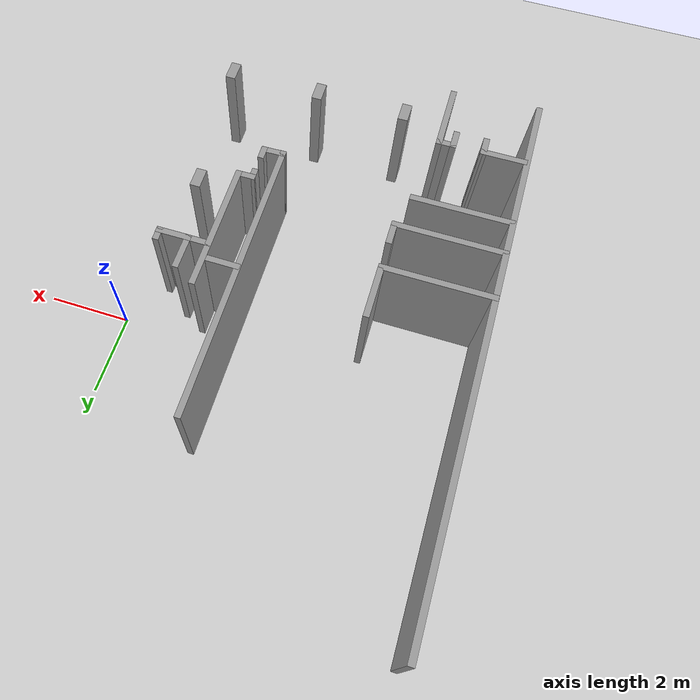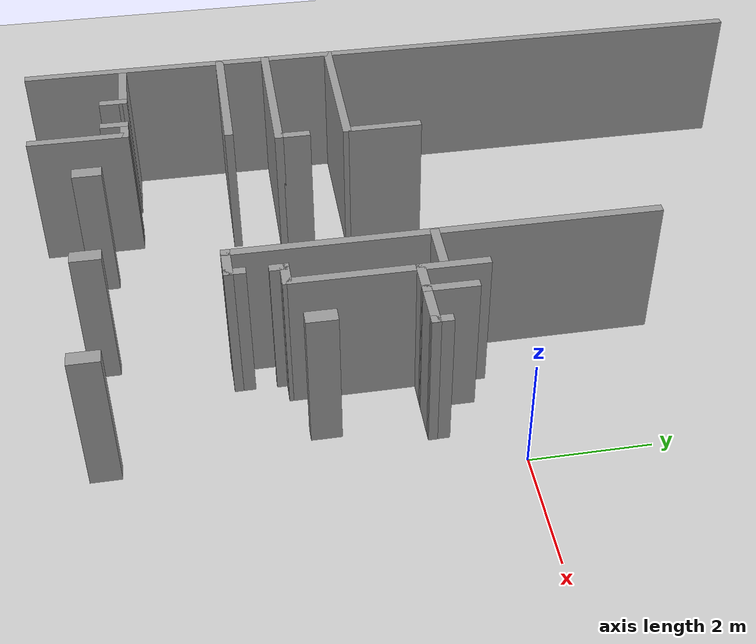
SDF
<sdf version="1.7">
 <world name="default">
  <model name="ground_plane">
   <static>1</static>
   <link name="link">
    <collision name="collision">
     <geometry><plane><normal>0 0 1</normal><size>100 100</size></plane></geometry>
     <surface><friction><ode><mu>100</mu><mu2>50</mu2></ode></friction></surface>
    </collision>
    <visual name="visual">
     <cast_shadows>0</cast_shadows>
     <geometry><plane><normal>0 0 1</normal><size>100 100</size></plane></geometry>
     <material>
      <script><uri>file://media/materials/scripts/gazebo.material</uri><name>Gazebo/Grey</name></script>
     </material>
    </visual>
   </link>
  </model>
  <model name="Level1">
   <link name="Wall_147_clone_clone_15">
    <pose>-1.07107 -3.0379 0 0 -0 1.5708</pose>
    <visual name="Wall_147_Visual">
     <pose>0 0 1.25 0 -0 0</pose>
     <geometry><box><size>0.5 0.25 2.5</size></box></geometry>
     <material>
      <script><uri>file://media/materials/scripts/gazebo.material</uri><name>Gazebo/Grey</name></script>
      <ambient>1 1 1 1</ambient>
      <shader type="pixel"/>
     </material>
     <meta><layer>0</layer></meta>
    </visual>
    <collision name="Wall_147_Collision">
     <pose>0 0 1.25 0 -0 0</pose>
     <geometry><box><size>0.5 0.25 2.5</size></box></geometry>
     <surface>
      <friction>
       <ode><mu>1</mu><mu2>1</mu2><fdir1>0 0 0</fdir1><slip1>0</slip1><slip2>0</slip2></ode>
       <torsional>
        <coefficient>1</coefficient>
        <patch_radius>0</patch_radius>
        <surface_radius>0</surface_radius>
        <use_patch_radius>1</use_patch_radius>
        <ode><slip>0</slip></ode>
       </torsional>
      </friction>
      <bounce><restitution_coefficient>0</restitution_coefficient><threshold>1e+06</threshold></bounce>
      <contact>
       <collide_without_contact>0</collide_without_contact>
       <collide_without_contact_bitmask>1</collide_without_contact_bitmask>
       <collide_bitmask>1</collide_bitmask>
       <ode>
        <soft_cfm>0</soft_cfm>
        <soft_erp>0.2</soft_erp>
        <kp>1e+13</kp>
        <kd>1</kd>
        <max_vel>0.01</max_vel>
        <min_depth>0</min_depth>
       </ode>
       <bullet>
        <split_impulse>1</split_impulse>
        <split_impulse_penetration_threshold>-0.01</split_impulse_penetration_threshold>
        <soft_cfm>0</soft_cfm>
        <soft_erp>0.2</soft_erp>
        <kp>1e+13</kp>
        <kd>1</kd>
       </bullet>
      </contact>
     </surface>
    </collision>
   </link>
   <link name="Wall_147_clone_clone_17">
    <pose>-5.27812 -6.47737 0 0 -0 1.5708</pose>
    <visual name="Wall_147_Visual">
     <pose>0 0 1.25 0 -0 0</pose>
     <geometry><box><size>0.5 0.25 2.5</size></box></geometry>
     <material>
      <script><uri>file://media/materials/scripts/gazebo.material</uri><name>Gazebo/Grey</name></script>
      <ambient>1 1 1 1</ambient>
      <shader type="pixel"/>
     </material>
     <meta><layer>0</layer></meta>
    </visual>
    <collision name="Wall_147_Collision">
     <pose>0 0 1.25 0 -0 0</pose>
     <geometry><box><size>0.5 0.25 2.5</size></box></geometry>
     <surface>
      <friction>
       <ode><mu>1</mu><mu2>1</mu2><fdir1>0 0 0</fdir1><slip1>0</slip1><slip2>0</slip2></ode>
       <torsional>
        <coefficient>1</coefficient>
        <patch_radius>0</patch_radius>
        <surface_radius>0</surface_radius>
        <use_patch_radius>1</use_patch_radius>
        <ode><slip>0</slip></ode>
       </torsional>
      </friction>
      <bounce><restitution_coefficient>0</restitution_coefficient><threshold>1e+06</threshold></bounce>
      <contact>
       <collide_without_contact>0</collide_without_contact>
       <collide_without_contact_bitmask>1</collide_without_contact_bitmask>
       <collide_bitmask>1</collide_bitmask>
       <ode>
        <soft_cfm>0</soft_cfm>
        <soft_erp>0.2</soft_erp>
        <kp>1e+13</kp>
        <kd>1</kd>
        <max_vel>0.01</max_vel>
        <min_depth>0</min_depth>
       </ode>
       <bullet>
        <split_impulse>1</split_impulse>
        <split_impulse_penetration_threshold>-0.01</split_impulse_penetration_threshold>
        <soft_cfm>0</soft_cfm>
        <soft_erp>0.2</soft_erp>
        <kp>1e+13</kp>
        <kd>1</kd>
       </bullet>
      </contact>
     </surface>
    </collision>
   </link>
   <link name="Wall_147_clone_clone_18">
    <pose>-3.04314 -6.47737 0 0 -0 1.5708</pose>
    <visual name="Wall_147_Visual">
     <pose>0 0 1.25 0 -0 0</pose>
     <geometry><box><size>0.5 0.25 2.5</size></box></geometry>
     <material>
      <script><uri>file://media/materials/scripts/gazebo.material</uri><name>Gazebo/Grey</name></script>
      <ambient>1 1 1 1</ambient>
      <shader type="pixel"/>
     </material>
     <meta><layer>0</layer></meta>
    </visual>
    <collision name="Wall_147_Collision">
     <pose>0 0 1.25 0 -0 0</pose>
     <geometry><box><size>0.5 0.25 2.5</size></box></geometry>
     <surface>
      <friction>
       <ode><mu>1</mu><mu2>1</mu2><fdir1>0 0 0</fdir1><slip1>0</slip1><slip2>0</slip2></ode>
       <torsional>
        <coefficient>1</coefficient>
        <patch_radius>0</patch_radius>
        <surface_radius>0</surface_radius>
        <use_patch_radius>1</use_patch_radius>
        <ode><slip>0</slip></ode>
       </torsional>
      </friction>
      <bounce><restitution_coefficient>0</restitution_coefficient><threshold>1e+06</threshold></bounce>
      <contact>
       <collide_without_contact>0</collide_without_contact>
       <collide_without_contact_bitmask>1</collide_without_contact_bitmask>
       <collide_bitmask>1</collide_bitmask>
       <ode>
        <soft_cfm>0</soft_cfm>
        <soft_erp>0.2</soft_erp>
        <kp>1e+13</kp>
        <kd>1</kd>
        <max_vel>0.01</max_vel>
        <min_depth>0</min_depth>
       </ode>
       <bullet>
        <split_impulse>1</split_impulse>
        <split_impulse_penetration_threshold>-0.01</split_impulse_penetration_threshold>
        <soft_cfm>0</soft_cfm>
        <soft_erp>0.2</soft_erp>
        <kp>1e+13</kp>
        <kd>1</kd>
       </bullet>
      </contact>
     </surface>
    </collision>
   </link>
   <link name="Wall_147_clone_clone_19">
    <pose>-0.744882 -6.47737 0 0 -0 1.5708</pose>
    <visual name="Wall_147_Visual">
     <pose>0 0 1.25 0 -0 0</pose>
     <geometry><box><size>0.5 0.25 2.5</size></box></geometry>
     <material>
      <script><uri>file://media/materials/scripts/gazebo.material</uri><name>Gazebo/Grey</name></script>
      <ambient>1 1 1 1</ambient>
      <shader type="pixel"/>
     </material>
     <meta><layer>0</layer></meta>
    </visual>
    <collision name="Wall_147_Collision">
     <pose>0 0 1.25 0 -0 0</pose>
     <geometry><box><size>0.5 0.25 2.5</size></box></geometry>
     <surface>
      <friction>
       <ode><mu>1</mu><mu2>1</mu2><fdir1>0 0 0</fdir1><slip1>0</slip1><slip2>0</slip2></ode>
       <torsional>
        <coefficient>1</coefficient>
        <patch_radius>0</patch_radius>
        <surface_radius>0</surface_radius>
        <use_patch_radius>1</use_patch_radius>
        <ode><slip>0</slip></ode>
       </torsional>
      </friction>
      <bounce><restitution_coefficient>0</restitution_coefficient><threshold>1e+06</threshold></bounce>
      <contact>
       <collide_without_contact>0</collide_without_contact>
       <collide_without_contact_bitmask>1</collide_without_contact_bitmask>
       <collide_bitmask>1</collide_bitmask>
       <ode>
        <soft_cfm>0</soft_cfm>
        <soft_erp>0.2</soft_erp>
        <kp>1e+13</kp>
        <kd>1</kd>
        <max_vel>0.01</max_vel>
        <min_depth>0</min_depth>
       </ode>
       <bullet>
        <split_impulse>1</split_impulse>
        <split_impulse_penetration_threshold>-0.01</split_impulse_penetration_threshold>
        <soft_cfm>0</soft_cfm>
        <soft_erp>0.2</soft_erp>
        <kp>1e+13</kp>
        <kd>1</kd>
       </bullet>
      </contact>
     </surface>
    </collision>
   </link>
   <link name="Wall_3">
    <pose>-8.45529 -0.886891 0 0 0 -1.5708</pose>
    <visual name="Wall_3_Visual">
     <pose>0 0 1.25 0 -0 0</pose>
     <geometry><box><size>13.5 0.15 2.5</size></box></geometry>
     <material>
      <script><uri>file://media/materials/scripts/gazebo.material</uri><name>Gazebo/Grey</name></script>
      <ambient>1 1 1 1</ambient>
      <shader type="pixel"/>
     </material>
     <meta><layer>0</layer></meta>
    </visual>
    <collision name="Wall_3_Collision">
     <pose>0 0 1.25 0 -0 0</pose>
     <geometry><box><size>13.5 0.15 2.5</size></box></geometry>
     <surface>
      <friction>
       <ode><mu>1</mu><mu2>1</mu2><fdir1>0 0 0</fdir1><slip1>0</slip1><slip2>0</slip2></ode>
       <torsional>
        <coefficient>1</coefficient>
        <patch_radius>0</patch_radius>
        <surface_radius>0</surface_radius>
        <use_patch_radius>1</use_patch_radius>
        <ode><slip>0</slip></ode>
       </torsional>
      </friction>
      <bounce><restitution_coefficient>0</restitution_coefficient><threshold>1e+06</threshold></bounce>
      <contact>
       <collide_without_contact>0</collide_without_contact>
       <collide_without_contact_bitmask>1</collide_without_contact_bitmask>
       <collide_bitmask>1</collide_bitmask>
       <ode>
        <soft_cfm>0</soft_cfm>
        <soft_erp>0.2</soft_erp>
        <kp>1e+13</kp>
        <kd>1</kd>
        <max_vel>0.01</max_vel>
        <min_depth>0</min_depth>
       </ode>
       <bullet>
        <split_impulse>1</split_impulse>
        <split_impulse_penetration_threshold>-0.01</split_impulse_penetration_threshold>
        <soft_cfm>0</soft_cfm>
        <soft_erp>0.2</soft_erp>
        <kp>1e+13</kp>
        <kd>1</kd>
       </bullet>
      </contact>
     </surface>
    </collision>
   </link>
   <link name="Wall_36">
    <pose>-7.88866 -5.85285 0 0 -0 0.000617</pose>
    <visual name="Wall_36_Visual">
     <pose>0 0 1.25 0 -0 0</pose>
     <geometry><box><size>1.14323 0.15 2.5</size></box></geometry>
     <material>
      <script><uri>file://media/materials/scripts/gazebo.material</uri><name>Gazebo/Grey</name></script>
      <ambient>1 1 1 1</ambient>
      <shader type="pixel"/>
     </material>
     <meta><layer>0</layer></meta>
    </visual>
    <collision name="Wall_36_Collision">
     <pose>0 0 1.25 0 -0 0</pose>
     <geometry><box><size>1.14323 0.15 2.5</size></box></geometry>
     <surface>
      <friction>
       <ode><mu>1</mu><mu2>1</mu2><fdir1>0 0 0</fdir1><slip1>0</slip1><slip2>0</slip2></ode>
       <torsional>
        <coefficient>1</coefficient>
        <patch_radius>0</patch_radius>
        <surface_radius>0</surface_radius>
        <use_patch_radius>1</use_patch_radius>
        <ode><slip>0</slip></ode>
       </torsional>
      </friction>
      <bounce><restitution_coefficient>0</restitution_coefficient><threshold>1e+06</threshold></bounce>
      <contact>
       <collide_without_contact>0</collide_without_contact>
       <collide_without_contact_bitmask>1</collide_without_contact_bitmask>
       <collide_bitmask>1</collide_bitmask>
       <ode>
        <soft_cfm>0</soft_cfm>
        <soft_erp>0.2</soft_erp>
        <kp>1e+13</kp>
        <kd>1</kd>
        <max_vel>0.01</max_vel>
        <min_depth>0</min_depth>
       </ode>
       <bullet>
        <split_impulse>1</split_impulse>
        <split_impulse_penetration_threshold>-0.01</split_impulse_penetration_threshold>
        <soft_cfm>0</soft_cfm>
        <soft_erp>0.2</soft_erp>
        <kp>1e+13</kp>
        <kd>1</kd>
       </bullet>
      </contact>
     </surface>
    </collision>
   </link>
   <link name="Wall_37">
    <pose>-7.39204 -6.02754 0 0 0 -1.5708</pose>
    <visual name="Wall_37_Visual">
     <pose>0 0 1.25 0 -0 0</pose>
     <geometry><box><size>0.5 0.15 2.5</size></box></geometry>
     <material>
      <script><uri>file://media/materials/scripts/gazebo.material</uri><name>Gazebo/Grey</name></script>
      <ambient>1 1 1 1</ambient>
      <shader type="pixel"/>
     </material>
     <meta><layer>0</layer></meta>
    </visual>
    <collision name="Wall_37_Collision">
     <pose>0 0 1.25 0 -0 0</pose>
     <geometry><box><size>0.5 0.15 2.5</size></box></geometry>
     <surface>
      <friction>
       <ode><mu>1</mu><mu2>1</mu2><fdir1>0 0 0</fdir1><slip1>0</slip1><slip2>0</slip2></ode>
       <torsional>
        <coefficient>1</coefficient>
        <patch_radius>0</patch_radius>
        <surface_radius>0</surface_radius>
        <use_patch_radius>1</use_patch_radius>
        <ode><slip>0</slip></ode>
       </torsional>
      </friction>
      <bounce><restitution_coefficient>0</restitution_coefficient><threshold>1e+06</threshold></bounce>
      <contact>
       <collide_without_contact>0</collide_without_contact>
       <collide_without_contact_bitmask>1</collide_without_contact_bitmask>
       <collide_bitmask>1</collide_bitmask>
       <ode>
        <soft_cfm>0</soft_cfm>
        <soft_erp>0.2</soft_erp>
        <kp>1e+13</kp>
        <kd>1</kd>
        <max_vel>0.01</max_vel>
        <min_depth>0</min_depth>
       </ode>
       <bullet>
        <split_impulse>1</split_impulse>
        <split_impulse_penetration_threshold>-0.01</split_impulse_penetration_threshold>
        <soft_cfm>0</soft_cfm>
        <soft_erp>0.2</soft_erp>
        <kp>1e+13</kp>
        <kd>1</kd>
       </bullet>
      </contact>
     </surface>
    </collision>
   </link>
   <link name="Wall_39">
    <pose>-6.47345 -5.83812 0 0 -0 0</pose>
    <visual name="Wall_39_Visual">
     <pose>0 0 1.25 0 -0 0</pose>
     <geometry><box><size>0.5 0.15 2.5</size></box></geometry>
     <material>
      <script><uri>file://media/materials/scripts/gazebo.material</uri><name>Gazebo/Grey</name></script>
      <ambient>1 1 1 1</ambient>
      <shader type="pixel"/>
     </material>
     <meta><layer>0</layer></meta>
    </visual>
    <collision name="Wall_39_Collision">
     <pose>0 0 1.25 0 -0 0</pose>
     <geometry><box><size>0.5 0.15 2.5</size></box></geometry>
     <surface>
      <friction>
       <ode><mu>1</mu><mu2>1</mu2><fdir1>0 0 0</fdir1><slip1>0</slip1><slip2>0</slip2></ode>
       <torsional>
        <coefficient>1</coefficient>
        <patch_radius>0</patch_radius>
        <surface_radius>0</surface_radius>
        <use_patch_radius>1</use_patch_radius>
        <ode><slip>0</slip></ode>
       </torsional>
      </friction>
      <bounce><restitution_coefficient>0</restitution_coefficient><threshold>1e+06</threshold></bounce>
      <contact>
       <collide_without_contact>0</collide_without_contact>
       <collide_without_contact_bitmask>1</collide_without_contact_bitmask>
       <collide_bitmask>1</collide_bitmask>
       <ode>
        <soft_cfm>0</soft_cfm>
        <soft_erp>0.2</soft_erp>
        <kp>1e+13</kp>
        <kd>1</kd>
        <max_vel>0.01</max_vel>
        <min_depth>0</min_depth>
       </ode>
       <bullet>
        <split_impulse>1</split_impulse>
        <split_impulse_penetration_threshold>-0.01</split_impulse_penetration_threshold>
        <soft_cfm>0</soft_cfm>
        <soft_erp>0.2</soft_erp>
        <kp>1e+13</kp>
        <kd>1</kd>
       </bullet>
      </contact>
     </surface>
    </collision>
   </link>
   <link name="Wall_40">
    <pose>-6.29845 -6.63811 0 0 0 -1.5708</pose>
    <visual name="Wall_40_Visual">
     <pose>0 0 1.25 0 -0 0</pose>
     <geometry><box><size>1.75 0.15 2.5</size></box></geometry>
     <material>
      <script><uri>file://media/materials/scripts/gazebo.material</uri><name>Gazebo/Grey</name></script>
      <ambient>1 1 1 1</ambient>
      <shader type="pixel"/>
     </material>
     <meta><layer>0</layer></meta>
    </visual>
    <collision name="Wall_40_Collision">
     <pose>0 0 1.25 0 -0 0</pose>
     <geometry><box><size>1.75 0.15 2.5</size></box></geometry>
     <surface>
      <friction>
       <ode><mu>1</mu><mu2>1</mu2><fdir1>0 0 0</fdir1><slip1>0</slip1><slip2>0</slip2></ode>
       <torsional>
        <coefficient>1</coefficient>
        <patch_radius>0</patch_radius>
        <surface_radius>0</surface_radius>
        <use_patch_radius>1</use_patch_radius>
        <ode><slip>0</slip></ode>
       </torsional>
      </friction>
      <bounce><restitution_coefficient>0</restitution_coefficient><threshold>1e+06</threshold></bounce>
      <contact>
       <collide_without_contact>0</collide_without_contact>
       <collide_without_contact_bitmask>1</collide_without_contact_bitmask>
       <collide_bitmask>1</collide_bitmask>
       <ode>
        <soft_cfm>0</soft_cfm>
        <soft_erp>0.2</soft_erp>
        <kp>1e+13</kp>
        <kd>1</kd>
        <max_vel>0.01</max_vel>
        <min_depth>0</min_depth>
       </ode>
       <bullet>
        <split_impulse>1</split_impulse>
        <split_impulse_penetration_threshold>-0.01</split_impulse_penetration_threshold>
        <soft_cfm>0</soft_cfm>
        <soft_erp>0.2</soft_erp>
        <kp>1e+13</kp>
        <kd>1</kd>
       </bullet>
      </contact>
     </surface>
    </collision>
   </link>
   <link name="Wall_42">
    <pose>-6.64845 -6.01311 0 0 0 -1.5708</pose>
    <visual name="Wall_42_Visual">
     <pose>0 0 1.25 0 -0 0</pose>
     <geometry><box><size>0.5 0.15 2.5</size></box></geometry>
     <material>
      <script><uri>file://media/materials/scripts/gazebo.material</uri><name>Gazebo/Grey</name></script>
      <ambient>1 1 1 1</ambient>
      <shader type="pixel"/>
     </material>
     <meta><layer>0</layer></meta>
    </visual>
    <collision name="Wall_42_Collision">
     <pose>0 0 1.25 0 -0 0</pose>
     <geometry><box><size>0.5 0.15 2.5</size></box></geometry>
     <surface>
      <friction>
       <ode><mu>1</mu><mu2>1</mu2><fdir1>0 0 0</fdir1><slip1>0</slip1><slip2>0</slip2></ode>
       <torsional>
        <coefficient>1</coefficient>
        <patch_radius>0</patch_radius>
        <surface_radius>0</surface_radius>
        <use_patch_radius>1</use_patch_radius>
        <ode><slip>0</slip></ode>
       </torsional>
      </friction>
      <bounce><restitution_coefficient>0</restitution_coefficient><threshold>1e+06</threshold></bounce>
      <contact>
       <collide_without_contact>0</collide_without_contact>
       <collide_without_contact_bitmask>1</collide_without_contact_bitmask>
       <collide_bitmask>1</collide_bitmask>
       <ode>
        <soft_cfm>0</soft_cfm>
        <soft_erp>0.2</soft_erp>
        <kp>1e+13</kp>
        <kd>1</kd>
        <max_vel>0.01</max_vel>
        <min_depth>0</min_depth>
       </ode>
       <bullet>
        <split_impulse>1</split_impulse>
        <split_impulse_penetration_threshold>-0.01</split_impulse_penetration_threshold>
        <soft_cfm>0</soft_cfm>
        <soft_erp>0.2</soft_erp>
        <kp>1e+13</kp>
        <kd>1</kd>
       </bullet>
      </contact>
     </surface>
    </collision>
   </link>
   <link name="Wall_44">
    <pose>-7.25264 -4.03783 0 0 -0 0</pose>
    <visual name="Wall_44_Visual">
     <pose>0 0 1.25 0 -0 0</pose>
     <geometry><box><size>2.5 0.15 2.5</size></box></geometry>
     <material>
      <script><uri>file://media/materials/scripts/gazebo.material</uri><name>Gazebo/Grey</name></script>
      <ambient>1 1 1 1</ambient>
      <shader type="pixel"/>
     </material>
     <meta><layer>0</layer></meta>
    </visual>
    <collision name="Wall_44_Collision">
     <pose>0 0 1.25 0 -0 0</pose>
     <geometry><box><size>2.5 0.15 2.5</size></box></geometry>
     <surface>
      <friction>
       <ode><mu>1</mu><mu2>1</mu2><fdir1>0 0 0</fdir1><slip1>0</slip1><slip2>0</slip2></ode>
       <torsional>
        <coefficient>1</coefficient>
        <patch_radius>0</patch_radius>
        <surface_radius>0</surface_radius>
        <use_patch_radius>1</use_patch_radius>
        <ode><slip>0</slip></ode>
       </torsional>
      </friction>
      <bounce><restitution_coefficient>0</restitution_coefficient><threshold>1e+06</threshold></bounce>
      <contact>
       <collide_without_contact>0</collide_without_contact>
       <collide_without_contact_bitmask>1</collide_without_contact_bitmask>
       <collide_bitmask>1</collide_bitmask>
       <ode>
        <soft_cfm>0</soft_cfm>
        <soft_erp>0.2</soft_erp>
        <kp>1e+13</kp>
        <kd>1</kd>
        <max_vel>0.01</max_vel>
        <min_depth>0</min_depth>
       </ode>
       <bullet>
        <split_impulse>1</split_impulse>
        <split_impulse_penetration_threshold>-0.01</split_impulse_penetration_threshold>
        <soft_cfm>0</soft_cfm>
        <soft_erp>0.2</soft_erp>
        <kp>1e+13</kp>
        <kd>1</kd>
       </bullet>
      </contact>
     </surface>
    </collision>
   </link>
   <link name="Wall_46">
    <pose>-7.14617 -3.18183 0 0 -0 0</pose>
    <visual name="Wall_46_Visual">
     <pose>0 0 1.25 0 -0 0</pose>
     <geometry><box><size>2.75 0.15 2.5</size></box></geometry>
     <material>
      <script><uri>file://media/materials/scripts/gazebo.material</uri><name>Gazebo/Grey</name></script>
      <ambient>1 1 1 1</ambient>
      <shader type="pixel"/>
     </material>
     <meta><layer>0</layer></meta>
    </visual>
    <collision name="Wall_46_Collision">
     <pose>0 0 1.25 0 -0 0</pose>
     <geometry><box><size>2.75 0.15 2.5</size></box></geometry>
     <surface>
      <friction>
       <ode><mu>1</mu><mu2>1</mu2><fdir1>0 0 0</fdir1><slip1>0</slip1><slip2>0</slip2></ode>
       <torsional>
        <coefficient>1</coefficient>
        <patch_radius>0</patch_radius>
        <surface_radius>0</surface_radius>
        <use_patch_radius>1</use_patch_radius>
        <ode><slip>0</slip></ode>
       </torsional>
      </friction>
      <bounce><restitution_coefficient>0</restitution_coefficient><threshold>1e+06</threshold></bounce>
      <contact>
       <collide_without_contact>0</collide_without_contact>
       <collide_without_contact_bitmask>1</collide_without_contact_bitmask>
       <collide_bitmask>1</collide_bitmask>
       <ode>
        <soft_cfm>0</soft_cfm>
        <soft_erp>0.2</soft_erp>
        <kp>1e+13</kp>
        <kd>1</kd>
        <max_vel>0.01</max_vel>
        <min_depth>0</min_depth>
       </ode>
       <bullet>
        <split_impulse>1</split_impulse>
        <split_impulse_penetration_threshold>-0.01</split_impulse_penetration_threshold>
        <soft_cfm>0</soft_cfm>
        <soft_erp>0.2</soft_erp>
        <kp>1e+13</kp>
        <kd>1</kd>
       </bullet>
      </contact>
     </surface>
    </collision>
   </link>
   <link name="Wall_47">
    <pose>-5.84617 -2.88183 0 0 -0 1.5708</pose>
    <gravity>0</gravity>
    <inertial>
     <mass>1</mass>
     <inertia><ixx>1</ixx><ixy>0</ixy><ixz>0</ixz><iyy>1</iyy><iyz>0</iyz><izz>1</izz></inertia>
    </inertial>
    <visual name="Wall_47_Visual">
     <pose>0 0 1.25 0 -0 0</pose>
     <geometry><box><size>0.5 0.15 2.5</size></box></geometry>
     <material>
      <script><uri>file://media/materials/scripts/gazebo.material</uri><name>Gazebo/Grey</name></script>
      <ambient>1 1 1 1</ambient>
      <shader type="pixel"><normal_map>__default__</normal_map></shader>
      <diffuse>0.7 0.7 0.7 1</diffuse>
      <specular>0.01 0.01 0.01 1</specular>
      <emissive>0 0 0 1</emissive>
     </material>
     <meta><layer>0</layer></meta>
    </visual>
    <collision name="Wall_47_Collision">
     <pose>0 0 1.25 0 -0 0</pose>
     <geometry><box><size>0.5 0.15 2.5</size></box></geometry>
     <surface>
      <friction>
       <ode><mu>1</mu><mu2>1</mu2><fdir1>0 0 0</fdir1><slip1>0</slip1><slip2>0</slip2></ode>
       <torsional>
        <coefficient>1</coefficient>
        <patch_radius>0</patch_radius>
        <surface_radius>0</surface_radius>
        <use_patch_radius>1</use_patch_radius>
        <ode><slip>0</slip></ode>
       </torsional>
      </friction>
      <bounce><restitution_coefficient>0</restitution_coefficient><threshold>1e+06</threshold></bounce>
      <contact>
       <collide_without_contact>0</collide_without_contact>
       <collide_without_contact_bitmask>1</collide_without_contact_bitmask>
       <collide_bitmask>1</collide_bitmask>
       <ode>
        <soft_cfm>0</soft_cfm>
        <soft_erp>0.2</soft_erp>
        <kp>1e+13</kp>
        <kd>1</kd>
        <max_vel>0.01</max_vel>
        <min_depth>0</min_depth>
       </ode>
       <bullet>
        <split_impulse>1</split_impulse>
        <split_impulse_penetration_threshold>-0.01</split_impulse_penetration_threshold>
        <soft_cfm>0</soft_cfm>
        <soft_erp>0.2</soft_erp>
        <kp>1e+13</kp>
        <kd>1</kd>
       </bullet>
      </contact>
     </surface>
    </collision>
   </link>
   <link name="Wall_51">
    <pose>-7.14907 -1.98142 0 0 -0 0</pose>
    <visual name="Wall_51_Visual">
     <pose>0 0 1.25 0 -0 0</pose>
     <geometry><box><size>2.75 0.15 2.5</size></box></geometry>
     <material>
      <script><uri>file://media/materials/scripts/gazebo.material</uri><name>Gazebo/Grey</name></script>
      <ambient>1 1 1 1</ambient>
      <shader type="pixel"/>
     </material>
     <meta><layer>0</layer></meta>
    </visual>
    <collision name="Wall_51_Collision">
     <pose>0 0 1.25 0 -0 0</pose>
     <geometry><box><size>2.75 0.15 2.5</size></box></geometry>
     <surface>
      <friction>
       <ode><mu>1</mu><mu2>1</mu2><fdir1>0 0 0</fdir1><slip1>0</slip1><slip2>0</slip2></ode>
       <torsional>
        <coefficient>1</coefficient>
        <patch_radius>0</patch_radius>
        <surface_radius>0</surface_radius>
        <use_patch_radius>1</use_patch_radius>
        <ode><slip>0</slip></ode>
       </torsional>
      </friction>
      <bounce><restitution_coefficient>0</restitution_coefficient><threshold>1e+06</threshold></bounce>
      <contact>
       <collide_without_contact>0</collide_without_contact>
       <collide_without_contact_bitmask>1</collide_without_contact_bitmask>
       <collide_bitmask>1</collide_bitmask>
       <ode>
        <soft_cfm>0</soft_cfm>
        <soft_erp>0.2</soft_erp>
        <kp>1e+13</kp>
        <kd>1</kd>
        <max_vel>0.01</max_vel>
        <min_depth>0</min_depth>
       </ode>
       <bullet>
        <split_impulse>1</split_impulse>
        <split_impulse_penetration_threshold>-0.01</split_impulse_penetration_threshold>
        <soft_cfm>0</soft_cfm>
        <soft_erp>0.2</soft_erp>
        <kp>1e+13</kp>
        <kd>1</kd>
       </bullet>
      </contact>
     </surface>
    </collision>
   </link>
   <link name="Wall_52">
    <pose>-5.84907 -1.30642 0 0 -0 1.5708</pose>
    <gravity>0</gravity>
    <inertial>
     <mass>1</mass>
     <inertia><ixx>1</ixx><ixy>0</ixy><ixz>0</ixz><iyy>1</iyy><iyz>0</iyz><izz>1</izz></inertia>
    </inertial>
    <visual name="Wall_52_Visual">
     <pose>0 0 1.25 0 -0 0</pose>
     <geometry><box><size>1.3 0.15 2.5</size></box></geometry>
     <material>
      <script><uri>file://media/materials/scripts/gazebo.material</uri><name>Gazebo/Grey</name></script>
      <ambient>1 1 1 1</ambient>
      <shader type="pixel"><normal_map>__default__</normal_map></shader>
      <diffuse>0.7 0.7 0.7 1</diffuse>
      <specular>0.01 0.01 0.01 1</specular>
      <emissive>0 0 0 1</emissive>
     </material>
     <meta><layer>0</layer></meta>
    </visual>
    <collision name="Wall_52_Collision">
     <pose>0 0 1.25 0 -0 0</pose>
     <geometry><box><size>1.3 0.15 2.5</size></box></geometry>
     <surface>
      <friction>
       <ode><mu>1</mu><mu2>1</mu2><fdir1>0 0 0</fdir1><slip1>0</slip1><slip2>0</slip2></ode>
       <torsional>
        <coefficient>1</coefficient>
        <patch_radius>0</patch_radius>
        <surface_radius>0</surface_radius>
        <use_patch_radius>1</use_patch_radius>
        <ode><slip>0</slip></ode>
       </torsional>
      </friction>
      <bounce><restitution_coefficient>0</restitution_coefficient><threshold>1e+06</threshold></bounce>
      <contact>
       <collide_without_contact>0</collide_without_contact>
       <collide_without_contact_bitmask>1</collide_without_contact_bitmask>
       <collide_bitmask>1</collide_bitmask>
       <ode>
        <soft_cfm>0</soft_cfm>
        <soft_erp>0.2</soft_erp>
        <kp>1e+13</kp>
        <kd>1</kd>
        <max_vel>0.01</max_vel>
        <min_depth>0</min_depth>
       </ode>
       <bullet>
        <split_impulse>1</split_impulse>
        <split_impulse_penetration_threshold>-0.01</split_impulse_penetration_threshold>
        <soft_cfm>0</soft_cfm>
        <soft_erp>0.2</soft_erp>
        <kp>1e+13</kp>
        <kd>1</kd>
       </bullet>
      </contact>
     </surface>
    </collision>
   </link>
   <link name="Wall_67">
    <pose>-2.77219 -0.826282 0 0 0 -1.56974</pose>
    <visual name="Wall_67_Visual">
     <pose>0 0 1.25 0 -0 0</pose>
     <geometry><box><size>7.15984 0.15 2.5</size></box></geometry>
     <material>
      <script><uri>file://media/materials/scripts/gazebo.material</uri><name>Gazebo/Grey</name></script>
      <ambient>1 1 1 1</ambient>
      <shader type="pixel"/>
     </material>
     <meta><layer>0</layer></meta>
    </visual>
    <collision name="Wall_67_Collision">
     <pose>0 0 1.25 0 -0 0</pose>
     <geometry><box><size>7.15984 0.15 2.5</size></box></geometry>
     <surface>
      <friction>
       <ode><mu>1</mu><mu2>1</mu2><fdir1>0 0 0</fdir1><slip1>0</slip1><slip2>0</slip2></ode>
       <torsional>
        <coefficient>1</coefficient>
        <patch_radius>0</patch_radius>
        <surface_radius>0</surface_radius>
        <use_patch_radius>1</use_patch_radius>
        <ode><slip>0</slip></ode>
       </torsional>
      </friction>
      <bounce><restitution_coefficient>0</restitution_coefficient><threshold>1e+06</threshold></bounce>
      <contact>
       <collide_without_contact>0</collide_without_contact>
       <collide_without_contact_bitmask>1</collide_without_contact_bitmask>
       <collide_bitmask>1</collide_bitmask>
       <ode>
        <soft_cfm>0</soft_cfm>
        <soft_erp>0.2</soft_erp>
        <kp>1e+13</kp>
        <kd>1</kd>
        <max_vel>0.01</max_vel>
        <min_depth>0</min_depth>
       </ode>
       <bullet>
        <split_impulse>1</split_impulse>
        <split_impulse_penetration_threshold>-0.01</split_impulse_penetration_threshold>
        <soft_cfm>0</soft_cfm>
        <soft_erp>0.2</soft_erp>
        <kp>1e+13</kp>
        <kd>1</kd>
       </bullet>
      </contact>
     </surface>
    </collision>
   </link>
   <link name="Wall_71">
    <pose>-2.53063 -4.32345 0 0 -0 0.016955</pose>
    <visual name="Wall_71_Visual">
     <pose>0 0 1.25 0 -0 0</pose>
     <geometry><box><size>0.625763 0.15 2.5</size></box></geometry>
     <material>
      <script><uri>file://media/materials/scripts/gazebo.material</uri><name>Gazebo/Grey</name></script>
      <ambient>1 1 1 1</ambient>
      <shader type="pixel"/>
     </material>
     <meta><layer>0</layer></meta>
    </visual>
    <collision name="Wall_71_Collision">
     <pose>0 0 1.25 0 -0 0</pose>
     <geometry><box><size>0.625763 0.15 2.5</size></box></geometry>
     <surface>
      <friction>
       <ode><mu>1</mu><mu2>1</mu2><fdir1>0 0 0</fdir1><slip1>0</slip1><slip2>0</slip2></ode>
       <torsional>
        <coefficient>1</coefficient>
        <patch_radius>0</patch_radius>
        <surface_radius>0</surface_radius>
        <use_patch_radius>1</use_patch_radius>
        <ode><slip>0</slip></ode>
       </torsional>
      </friction>
      <bounce><restitution_coefficient>0</restitution_coefficient><threshold>1e+06</threshold></bounce>
      <contact>
       <collide_without_contact>0</collide_without_contact>
       <collide_without_contact_bitmask>1</collide_without_contact_bitmask>
       <collide_bitmask>1</collide_bitmask>
       <ode>
        <soft_cfm>0</soft_cfm>
        <soft_erp>0.2</soft_erp>
        <kp>1e+13</kp>
        <kd>1</kd>
        <max_vel>0.01</max_vel>
        <min_depth>0</min_depth>
       </ode>
       <bullet>
        <split_impulse>1</split_impulse>
        <split_impulse_penetration_threshold>-0.01</split_impulse_penetration_threshold>
        <soft_cfm>0</soft_cfm>
        <soft_erp>0.2</soft_erp>
        <kp>1e+13</kp>
        <kd>1</kd>
       </bullet>
      </contact>
     </surface>
    </collision>
   </link>
   <link name="Wall_72">
    <pose>-2.29439 -4.21976 0 0 -0 1.56838</pose>
    <visual name="Wall_72_Visual">
     <pose>0 0 1.25 0 -0 0</pose>
     <geometry><box><size>0.349303 0.15 2.5</size></box></geometry>
     <material>
      <script><uri>file://media/materials/scripts/gazebo.material</uri><name>Gazebo/Grey</name></script>
      <ambient>1 1 1 1</ambient>
      <shader type="pixel"/>
     </material>
     <meta><layer>0</layer></meta>
    </visual>
    <collision name="Wall_72_Collision">
     <pose>0 0 1.25 0 -0 0</pose>
     <geometry><box><size>0.349303 0.15 2.5</size></box></geometry>
     <surface>
      <friction>
       <ode><mu>1</mu><mu2>1</mu2><fdir1>0 0 0</fdir1><slip1>0</slip1><slip2>0</slip2></ode>
       <torsional>
        <coefficient>1</coefficient>
        <patch_radius>0</patch_radius>
        <surface_radius>0</surface_radius>
        <use_patch_radius>1</use_patch_radius>
        <ode><slip>0</slip></ode>
       </torsional>
      </friction>
      <bounce><restitution_coefficient>0</restitution_coefficient><threshold>1e+06</threshold></bounce>
      <contact>
       <collide_without_contact>0</collide_without_contact>
       <collide_without_contact_bitmask>1</collide_without_contact_bitmask>
       <collide_bitmask>1</collide_bitmask>
       <ode>
        <soft_cfm>0</soft_cfm>
        <soft_erp>0.2</soft_erp>
        <kp>1e+13</kp>
        <kd>1</kd>
        <max_vel>0.01</max_vel>
        <min_depth>0</min_depth>
       </ode>
       <bullet>
        <split_impulse>1</split_impulse>
        <split_impulse_penetration_threshold>-0.01</split_impulse_penetration_threshold>
        <soft_cfm>0</soft_cfm>
        <soft_erp>0.2</soft_erp>
        <kp>1e+13</kp>
        <kd>1</kd>
       </bullet>
      </contact>
     </surface>
    </collision>
   </link>
   <link name="Wall_81">
    <pose>-2.28497 -3.53784 0 0 -0 1.5708</pose>
    <visual name="Wall_81_Visual">
     <pose>0 0 1.25 0 -0 0</pose>
     <geometry><box><size>0.316332 0.15 2.5</size></box></geometry>
     <material>
      <script><uri>file://media/materials/scripts/gazebo.material</uri><name>Gazebo/Grey</name></script>
      <ambient>1 1 1 1</ambient>
      <shader type="pixel"/>
     </material>
     <meta><layer>0</layer></meta>
    </visual>
    <collision name="Wall_81_Collision">
     <pose>0 0 1.25 0 -0 0</pose>
     <geometry><box><size>0.316332 0.15 2.5</size></box></geometry>
     <surface>
      <friction>
       <ode><mu>1</mu><mu2>1</mu2><fdir1>0 0 0</fdir1><slip1>0</slip1><slip2>0</slip2></ode>
       <torsional>
        <coefficient>1</coefficient>
        <patch_radius>0</patch_radius>
        <surface_radius>0</surface_radius>
        <use_patch_radius>1</use_patch_radius>
        <ode><slip>0</slip></ode>
       </torsional>
      </friction>
      <bounce><restitution_coefficient>0</restitution_coefficient><threshold>1e+06</threshold></bounce>
      <contact>
       <collide_without_contact>0</collide_without_contact>
       <collide_without_contact_bitmask>1</collide_without_contact_bitmask>
       <collide_bitmask>1</collide_bitmask>
       <ode>
        <soft_cfm>0</soft_cfm>
        <soft_erp>0.2</soft_erp>
        <kp>1e+13</kp>
        <kd>1</kd>
        <max_vel>0.01</max_vel>
        <min_depth>0</min_depth>
       </ode>
       <bullet>
        <split_impulse>1</split_impulse>
        <split_impulse_penetration_threshold>-0.01</split_impulse_penetration_threshold>
        <soft_cfm>0</soft_cfm>
        <soft_erp>0.2</soft_erp>
        <kp>1e+13</kp>
        <kd>1</kd>
       </bullet>
      </contact>
     </surface>
    </collision>
   </link>
   <link name="Wall_82">
    <pose>-2.1099 -3.45455 0 0 -0 0.000759</pose>
    <visual name="Wall_82_Visual">
     <pose>0 0 1.25 0 -0 0</pose>
     <geometry><box><size>0.500123 0.15 2.5</size></box></geometry>
     <material>
      <script><uri>file://media/materials/scripts/gazebo.material</uri><name>Gazebo/Grey</name></script>
      <ambient>1 1 1 1</ambient>
      <shader type="pixel"/>
     </material>
     <meta><layer>0</layer></meta>
    </visual>
    <collision name="Wall_82_Collision">
     <pose>0 0 1.25 0 -0 0</pose>
     <geometry><box><size>0.500123 0.15 2.5</size></box></geometry>
     <surface>
      <friction>
       <ode><mu>1</mu><mu2>1</mu2><fdir1>0 0 0</fdir1><slip1>0</slip1><slip2>0</slip2></ode>
       <torsional>
        <coefficient>1</coefficient>
        <patch_radius>0</patch_radius>
        <surface_radius>0</surface_radius>
        <use_patch_radius>1</use_patch_radius>
        <ode><slip>0</slip></ode>
       </torsional>
      </friction>
      <bounce><restitution_coefficient>0</restitution_coefficient><threshold>1e+06</threshold></bounce>
      <contact>
       <collide_without_contact>0</collide_without_contact>
       <collide_without_contact_bitmask>1</collide_without_contact_bitmask>
       <collide_bitmask>1</collide_bitmask>
       <ode>
        <soft_cfm>0</soft_cfm>
        <soft_erp>0.2</soft_erp>
        <kp>1e+13</kp>
        <kd>1</kd>
        <max_vel>0.01</max_vel>
        <min_depth>0</min_depth>
       </ode>
       <bullet>
        <split_impulse>1</split_impulse>
        <split_impulse_penetration_threshold>-0.01</split_impulse_penetration_threshold>
        <soft_cfm>0</soft_cfm>
        <soft_erp>0.2</soft_erp>
        <kp>1e+13</kp>
        <kd>1</kd>
       </bullet>
      </contact>
     </surface>
    </collision>
   </link>
   <link name="Wall_85">
    <pose>-1.93484 -1.90441 0 0 -0 1.5708</pose>
    <visual name="Wall_85_Visual">
     <pose>0 0 1.25 0 -0 0</pose>
     <geometry><box><size>3.25 0.15 2.5</size></box></geometry>
     <material>
      <script><uri>file://media/materials/scripts/gazebo.material</uri><name>Gazebo/Grey</name></script>
      <ambient>1 1 1 1</ambient>
      <shader type="pixel"/>
     </material>
     <meta><layer>0</layer></meta>
    </visual>
    <collision name="Wall_85_Collision">
     <pose>0 0 1.25 0 -0 0</pose>
     <geometry><box><size>3.25 0.15 2.5</size></box></geometry>
     <surface>
      <friction>
       <ode><mu>1</mu><mu2>1</mu2><fdir1>0 0 0</fdir1><slip1>0</slip1><slip2>0</slip2></ode>
       <torsional>
        <coefficient>1</coefficient>
        <patch_radius>0</patch_radius>
        <surface_radius>0</surface_radius>
        <use_patch_radius>1</use_patch_radius>
        <ode><slip>0</slip></ode>
       </torsional>
      </friction>
      <bounce><restitution_coefficient>0</restitution_coefficient><threshold>1e+06</threshold></bounce>
      <contact>
       <collide_without_contact>0</collide_without_contact>
       <collide_without_contact_bitmask>1</collide_without_contact_bitmask>
       <collide_bitmask>1</collide_bitmask>
       <ode>
        <soft_cfm>0</soft_cfm>
        <soft_erp>0.2</soft_erp>
        <kp>1e+13</kp>
        <kd>1</kd>
        <max_vel>0.01</max_vel>
        <min_depth>0</min_depth>
       </ode>
       <bullet>
        <split_impulse>1</split_impulse>
        <split_impulse_penetration_threshold>-0.01</split_impulse_penetration_threshold>
        <soft_cfm>0</soft_cfm>
        <soft_erp>0.2</soft_erp>
        <kp>1e+13</kp>
        <kd>1</kd>
       </bullet>
      </contact>
     </surface>
    </collision>
   </link>
   <link name="Wall_87">
    <pose>-2.3502 -1.00896 0 0 0 -0.006195</pose>
    <visual name="Wall_87_Visual">
     <pose>0 0 1.25 0 -0 0</pose>
     <geometry><box><size>0.948298 0.15 2.5</size></box></geometry>
     <material>
      <script><uri>file://media/materials/scripts/gazebo.material</uri><name>Gazebo/Grey</name></script>
      <ambient>1 1 1 1</ambient>
      <shader type="pixel"/>
     </material>
     <meta><layer>0</layer></meta>
    </visual>
    <collision name="Wall_87_Collision">
     <pose>0 0 1.25 0 -0 0</pose>
     <geometry><box><size>0.948298 0.15 2.5</size></box></geometry>
     <surface>
      <friction>
       <ode><mu>1</mu><mu2>1</mu2><fdir1>0 0 0</fdir1><slip1>0</slip1><slip2>0</slip2></ode>
       <torsional>
        <coefficient>1</coefficient>
        <patch_radius>0</patch_radius>
        <surface_radius>0</surface_radius>
        <use_patch_radius>1</use_patch_radius>
        <ode><slip>0</slip></ode>
       </torsional>
      </friction>
      <bounce><restitution_coefficient>0</restitution_coefficient><threshold>1e+06</threshold></bounce>
      <contact>
       <collide_without_contact>0</collide_without_contact>
       <collide_without_contact_bitmask>1</collide_without_contact_bitmask>
       <collide_bitmask>1</collide_bitmask>
       <ode>
        <soft_cfm>0</soft_cfm>
        <soft_erp>0.2</soft_erp>
        <kp>1e+13</kp>
        <kd>1</kd>
        <max_vel>0.01</max_vel>
        <min_depth>0</min_depth>
       </ode>
       <bullet>
        <split_impulse>1</split_impulse>
        <split_impulse_penetration_threshold>-0.01</split_impulse_penetration_threshold>
        <soft_cfm>0</soft_cfm>
        <soft_erp>0.2</soft_erp>
        <kp>1e+13</kp>
        <kd>1</kd>
       </bullet>
      </contact>
     </surface>
    </collision>
   </link>
   <link name="Wall_91">
    <pose>-1.67579 -1.38897 0 0 0 -0.003315</pose>
    <visual name="Wall_91_Visual">
     <pose>0 0 1.25 0 -0 0</pose>
     <geometry><box><size>0.631674 0.15 2.5</size></box></geometry>
     <material>
      <script><uri>file://media/materials/scripts/gazebo.material</uri><name>Gazebo/Grey</name></script>
      <ambient>1 1 1 1</ambient>
      <shader type="pixel"/>
     </material>
     <meta><layer>0</layer></meta>
    </visual>
    <collision name="Wall_91_Collision">
     <pose>0 0 1.25 0 -0 0</pose>
     <geometry><box><size>0.631674 0.15 2.5</size></box></geometry>
     <surface>
      <friction>
       <ode><mu>1</mu><mu2>1</mu2><fdir1>0 0 0</fdir1><slip1>0</slip1><slip2>0</slip2></ode>
       <torsional>
        <coefficient>1</coefficient>
        <patch_radius>0</patch_radius>
        <surface_radius>0</surface_radius>
        <use_patch_radius>1</use_patch_radius>
        <ode><slip>0</slip></ode>
       </torsional>
      </friction>
      <bounce><restitution_coefficient>0</restitution_coefficient><threshold>1e+06</threshold></bounce>
      <contact>
       <collide_without_contact>0</collide_without_contact>
       <collide_without_contact_bitmask>1</collide_without_contact_bitmask>
       <collide_bitmask>1</collide_bitmask>
       <ode>
        <soft_cfm>0</soft_cfm>
        <soft_erp>0.2</soft_erp>
        <kp>1e+13</kp>
        <kd>1</kd>
        <max_vel>0.01</max_vel>
        <min_depth>0</min_depth>
       </ode>
       <bullet>
        <split_impulse>1</split_impulse>
        <split_impulse_penetration_threshold>-0.01</split_impulse_penetration_threshold>
        <soft_cfm>0</soft_cfm>
        <soft_erp>0.2</soft_erp>
        <kp>1e+13</kp>
        <kd>1</kd>
       </bullet>
      </contact>
     </surface>
    </collision>
   </link>
   <link name="Wall_92">
    <pose>-1.42882 -1.01621 0 0 -0 1.56582</pose>
    <visual name="Wall_92_Visual">
     <pose>0 0 1.25 0 -0 0</pose>
     <geometry><box><size>0.897133 0.15 2.5</size></box></geometry>
     <material>
      <script><uri>file://media/materials/scripts/gazebo.material</uri><name>Gazebo/Grey</name></script>
      <ambient>1 1 1 1</ambient>
      <shader type="pixel"/>
     </material>
     <meta><layer>0</layer></meta>
    </visual>
    <collision name="Wall_92_Collision">
     <pose>0 0 1.25 0 -0 0</pose>
     <geometry><box><size>0.897133 0.15 2.5</size></box></geometry>
     <surface>
      <friction>
       <ode><mu>1</mu><mu2>1</mu2><fdir1>0 0 0</fdir1><slip1>0</slip1><slip2>0</slip2></ode>
       <torsional>
        <coefficient>1</coefficient>
        <patch_radius>0</patch_radius>
        <surface_radius>0</surface_radius>
        <use_patch_radius>1</use_patch_radius>
        <ode><slip>0</slip></ode>
       </torsional>
      </friction>
      <bounce><restitution_coefficient>0</restitution_coefficient><threshold>1e+06</threshold></bounce>
      <contact>
       <collide_without_contact>0</collide_without_contact>
       <collide_without_contact_bitmask>1</collide_without_contact_bitmask>
       <collide_bitmask>1</collide_bitmask>
       <ode>
        <soft_cfm>0</soft_cfm>
        <soft_erp>0.2</soft_erp>
        <kp>1e+13</kp>
        <kd>1</kd>
        <max_vel>0.01</max_vel>
        <min_depth>0</min_depth>
       </ode>
       <bullet>
        <split_impulse>1</split_impulse>
        <split_impulse_penetration_threshold>-0.01</split_impulse_penetration_threshold>
        <soft_cfm>0</soft_cfm>
        <soft_erp>0.2</soft_erp>
        <kp>1e+13</kp>
        <kd>1</kd>
       </bullet>
      </contact>
     </surface>
    </collision>
   </link>
   <link name="Wall_94">
    <pose>-1.08149 -1.38946 0 0 -0 0.000864</pose>
    <visual name="Wall_94_Visual">
     <pose>0 0 1.25 0 -0 0</pose>
     <geometry><box><size>0.856942 0.15 2.5</size></box></geometry>
     <material>
      <script><uri>file://media/materials/scripts/gazebo.material</uri><name>Gazebo/Grey</name></script>
      <ambient>1 1 1 1</ambient>
      <shader type="pixel"/>
     </material>
     <meta><layer>0</layer></meta>
    </visual>
    <collision name="Wall_94_Collision">
     <pose>0 0 1.25 0 -0 0</pose>
     <geometry><box><size>0.856942 0.15 2.5</size></box></geometry>
     <surface>
      <friction>
       <ode><mu>1</mu><mu2>1</mu2><fdir1>0 0 0</fdir1><slip1>0</slip1><slip2>0</slip2></ode>
       <torsional>
        <coefficient>1</coefficient>
        <patch_radius>0</patch_radius>
        <surface_radius>0</surface_radius>
        <use_patch_radius>1</use_patch_radius>
        <ode><slip>0</slip></ode>
       </torsional>
      </friction>
      <bounce><restitution_coefficient>0</restitution_coefficient><threshold>1e+06</threshold></bounce>
      <contact>
       <collide_without_contact>0</collide_without_contact>
       <collide_without_contact_bitmask>1</collide_without_contact_bitmask>
       <collide_bitmask>1</collide_bitmask>
       <ode>
        <soft_cfm>0</soft_cfm>
        <soft_erp>0.2</soft_erp>
        <kp>1e+13</kp>
        <kd>1</kd>
        <max_vel>0.01</max_vel>
        <min_depth>0</min_depth>
       </ode>
       <bullet>
        <split_impulse>1</split_impulse>
        <split_impulse_penetration_threshold>-0.01</split_impulse_penetration_threshold>
        <soft_cfm>0</soft_cfm>
        <soft_erp>0.2</soft_erp>
        <kp>1e+13</kp>
        <kd>1</kd>
       </bullet>
      </contact>
     </surface>
    </collision>
   </link>
   <link name="Wall_95">
    <pose>-0.732545 -1.29007 0 0 -0 1.57339</pose>
    <visual name="Wall_95_Visual">
     <pose>0 0 1.25 0 -0 0</pose>
     <geometry><box><size>0.34819 0.15 2.5</size></box></geometry>
     <material>
      <script><uri>file://media/materials/scripts/gazebo.material</uri><name>Gazebo/Grey</name></script>
      <ambient>1 1 1 1</ambient>
      <shader type="pixel"/>
     </material>
     <meta><layer>0</layer></meta>
    </visual>
    <collision name="Wall_95_Collision">
     <pose>0 0 1.25 0 -0 0</pose>
     <geometry><box><size>0.34819 0.15 2.5</size></box></geometry>
     <surface>
      <friction>
       <ode><mu>1</mu><mu2>1</mu2><fdir1>0 0 0</fdir1><slip1>0</slip1><slip2>0</slip2></ode>
       <torsional>
        <coefficient>1</coefficient>
        <patch_radius>0</patch_radius>
        <surface_radius>0</surface_radius>
        <use_patch_radius>1</use_patch_radius>
        <ode><slip>0</slip></ode>
       </torsional>
      </friction>
      <bounce><restitution_coefficient>0</restitution_coefficient><threshold>1e+06</threshold></bounce>
      <contact>
       <collide_without_contact>0</collide_without_contact>
       <collide_without_contact_bitmask>1</collide_without_contact_bitmask>
       <collide_bitmask>1</collide_bitmask>
       <ode>
        <soft_cfm>0</soft_cfm>
        <soft_erp>0.2</soft_erp>
        <kp>1e+13</kp>
        <kd>1</kd>
        <max_vel>0.01</max_vel>
        <min_depth>0</min_depth>
       </ode>
       <bullet>
        <split_impulse>1</split_impulse>
        <split_impulse_penetration_threshold>-0.01</split_impulse_penetration_threshold>
        <soft_cfm>0</soft_cfm>
        <soft_erp>0.2</soft_erp>
        <kp>1e+13</kp>
        <kd>1</kd>
       </bullet>
      </contact>
     </surface>
    </collision>
   </link>
   <static>1</static>
   <pose>-0.002726 0.011436 0 0 -0 0</pose>
  </model>
 </world>
</sdf>
